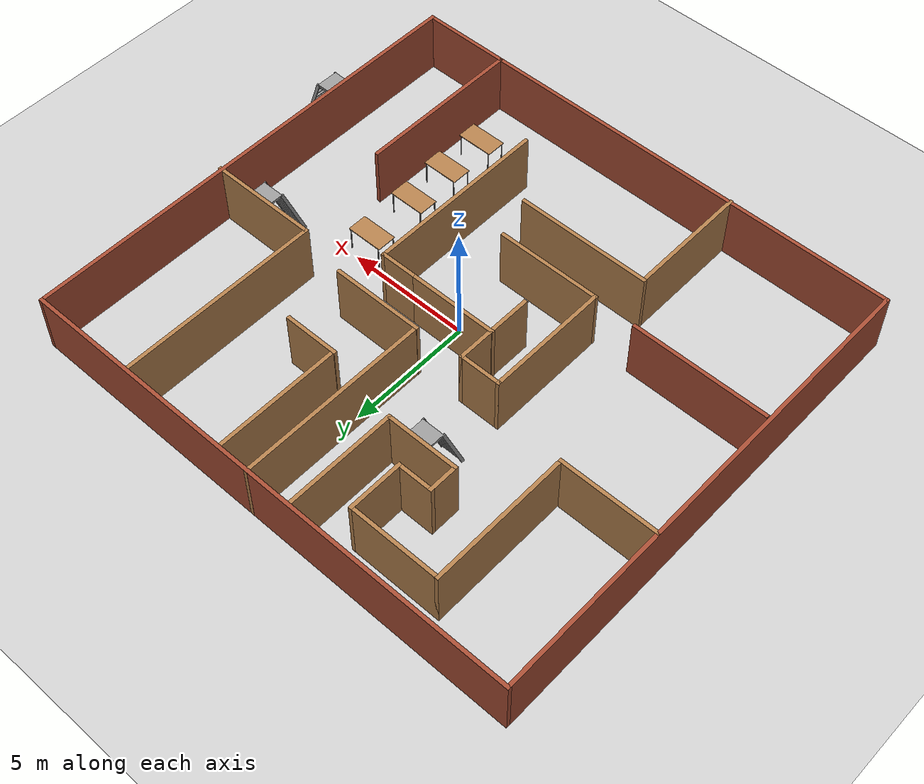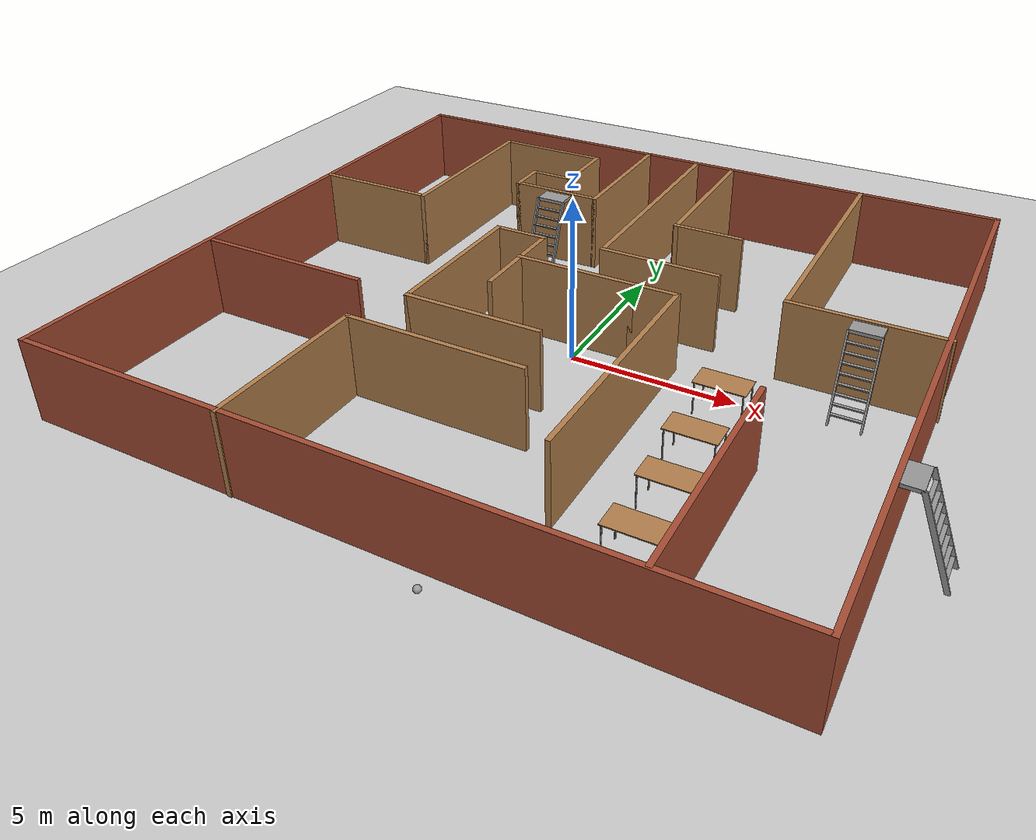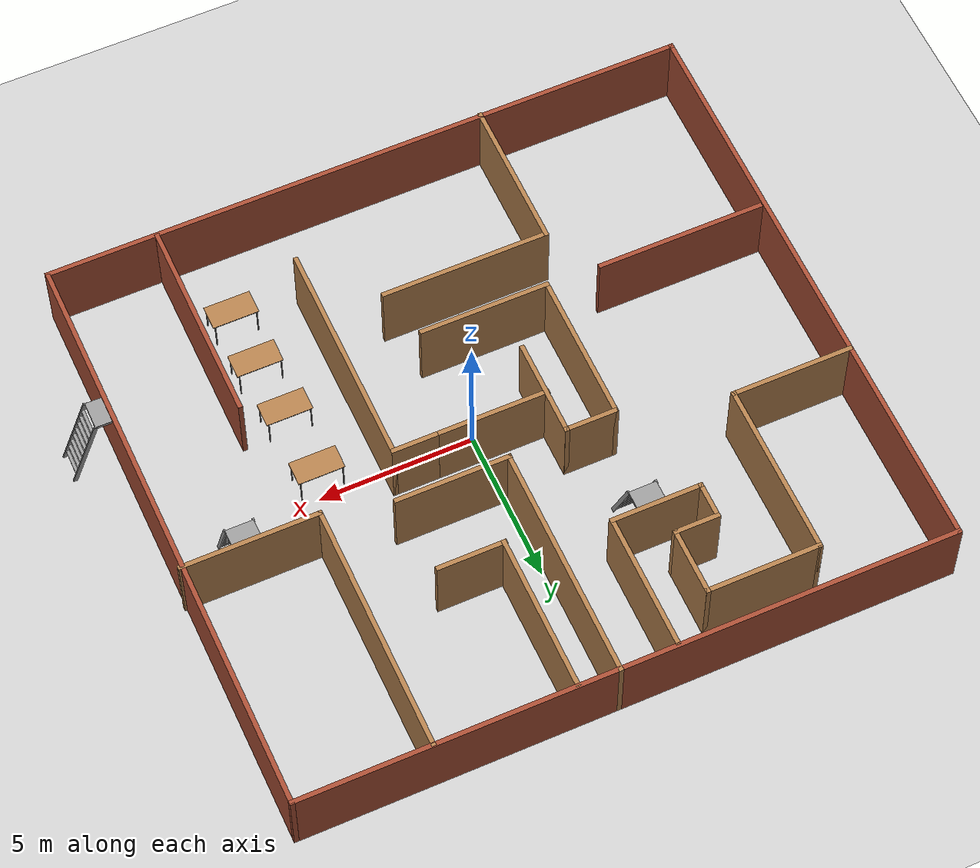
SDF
<sdf version="1.6">
 <world name="default">
  <light name="sun" type="directional">
   <pose>0 0 10 0 -0 0</pose>
   <diffuse>0.8 0.8 0.8 1</diffuse>
   <specular>0.2 0.2 0.2 1</specular>
   <attenuation>
    <range>1000</range>
    <constant>0.9</constant>
    <linear>0.01</linear>
    <quadratic>0.001</quadratic>
   </attenuation>
   <direction>-0.5 0.1 -0.9</direction>
  </light>
  <model name="ground_plane">
   <static>1</static>
   <link name="link">
    <collision name="collision">
     <geometry><plane><normal>0 0 1</normal><size>100 100</size></plane></geometry>
     <surface><friction><ode><mu>100</mu><mu2>50</mu2></ode></friction></surface>
    </collision>
    <visual name="visual">
     <cast_shadows>0</cast_shadows>
     <geometry><plane><normal>0 0 1</normal><size>100 100</size></plane></geometry>
     <material>
      <script><uri>file://media/materials/scripts/gazebo.material</uri><name>Gazebo/Grey</name></script>
     </material>
    </visual>
   </link>
  </model>
  <gravity>0 0 -9.8</gravity>
  <magnetic_field>6e-06 2.3e-05 -4.2e-05</magnetic_field>
  <atmosphere type="adiabatic"/>
  <physics name="default_physics" default="0" type="ode">
   <max_step_size>0.001</max_step_size>
   <real_time_factor>1</real_time_factor>
   <real_time_update_rate>1000</real_time_update_rate>
  </physics>
  <scene><ambient>0.4 0.4 0.4 1</ambient><background>0.7 0.7 0.7 1</background><shadows>1</shadows></scene>
  <audio><device>default</device></audio>
  <spherical_coordinates>
   <surface_model>EARTH_WGS84</surface_model>
   <latitude_deg>0</latitude_deg>
   <longitude_deg>0</longitude_deg>
   <elevation>0</elevation>
   <heading_deg>0</heading_deg>
  </spherical_coordinates>
  <model name="no-door-office">
   <pose>-0.50993 0.33776 0 0 -0 0</pose>
   <link name="Wall_10">
    <collision name="Wall_10_Collision">
     <geometry><box><size>3.75 0.15 2.5</size></box></geometry>
     <pose>0 0 1.25 0 -0 0</pose>
    </collision>
    <visual name="Wall_10_Visual">
     <pose>0 0 1.25 0 -0 0</pose>
     <geometry><box><size>3.75 0.15 2.5</size></box></geometry>
     <material>
      <script><uri>file://media/materials/scripts/gazebo.material</uri><name>Gazebo/Wood</name></script>
      <ambient>1 1 1 1</ambient>
     </material>
     <meta><layer>0</layer></meta>
    </visual>
    <pose>-4.7877 8.31382 0 0 -0 0</pose>
   </link>
   <link name="Wall_11">
    <collision name="Wall_11_Collision">
     <geometry><box><size>2.25 0.15 2.5</size></box></geometry>
     <pose>0 0 1.25 0 -0 0</pose>
    </collision>
    <visual name="Wall_11_Visual">
     <pose>0 0 1.25 0 -0 0</pose>
     <geometry><box><size>2.25 0.15 2.5</size></box></geometry>
     <material>
      <script><uri>file://media/materials/scripts/gazebo.material</uri><name>Gazebo/Wood</name></script>
      <ambient>1 1 1 1</ambient>
     </material>
     <meta><layer>0</layer></meta>
    </visual>
    <pose>-2.9877 7.26382 0 0 -0 -1.5708</pose>
   </link>
   <link name="Wall_12">
    <collision name="Wall_12_Collision">
     <geometry><box><size>1.5 0.15 2.5</size></box></geometry>
     <pose>0 0 1.25 0 -0 0</pose>
    </collision>
    <visual name="Wall_12_Visual">
     <pose>0 0 1.25 0 -0 0</pose>
     <geometry><box><size>1.5 0.15 2.5</size></box></geometry>
     <material>
      <script><uri>file://media/materials/scripts/gazebo.material</uri><name>Gazebo/Wood</name></script>
      <ambient>1 1 1 1</ambient>
     </material>
     <meta><layer>0</layer></meta>
    </visual>
    <pose>-3.6627 6.21382 0 0 -0 3.14159</pose>
   </link>
   <link name="Wall_13">
    <collision name="Wall_13_Collision">
     <geometry><box><size>1.25 0.15 2.5</size></box></geometry>
     <pose>0 0 1.25 0 -0 0</pose>
    </collision>
    <visual name="Wall_13_Visual">
     <pose>0 0 1.25 0 -0 0</pose>
     <geometry><box><size>1.25 0.15 2.5</size></box></geometry>
     <material>
      <script><uri>file://media/materials/scripts/gazebo.material</uri><name>Gazebo/Wood</name></script>
      <ambient>1 1 1 1</ambient>
     </material>
     <meta><layer>0</layer></meta>
    </visual>
    <pose>-4.3377 5.66382 0 0 -0 -1.5708</pose>
   </link>
   <link name="Wall_14">
    <collision name="Wall_14_Collision">
     <geometry><box><size>3 0.15 2.5</size></box></geometry>
     <pose>0 0 1.25 0 -0 0</pose>
    </collision>
    <visual name="Wall_14_Visual">
     <pose>0 0 1.25 0 -0 0</pose>
     <geometry><box><size>3 0.15 2.5</size></box></geometry>
     <material>
      <script><uri>file://media/materials/scripts/gazebo.material</uri><name>Gazebo/Wood</name></script>
      <ambient>1 1 1 1</ambient>
     </material>
     <meta><layer>0</layer></meta>
    </visual>
    <pose>-2.9127 5.11382 0 0 -0 0</pose>
   </link>
   <link name="Wall_15">
    <collision name="Wall_15_Collision">
     <geometry><box><size>4.5 0.15 2.5</size></box></geometry>
     <pose>0 0 1.25 0 -0 0</pose>
    </collision>
    <visual name="Wall_15_Visual">
     <pose>0 0 1.25 0 -0 0</pose>
     <geometry><box><size>4.5 0.15 2.5</size></box></geometry>
     <material>
      <script><uri>file://media/materials/scripts/gazebo.material</uri><name>Gazebo/Wood</name></script>
      <ambient>1 1 1 1</ambient>
     </material>
     <meta><layer>0</layer></meta>
    </visual>
    <pose>-1.4877 7.28882 0 0 -0 1.5708</pose>
   </link>
   <link name="Wall_17">
    <collision name="Wall_17_Collision">
     <geometry><box><size>7.75 0.15 2.5</size></box></geometry>
     <pose>0 0 1.25 0 -0 0</pose>
    </collision>
    <visual name="Wall_17_Visual">
     <pose>0 0 1.25 0 -0 0</pose>
     <geometry><box><size>7.75 0.15 2.5</size></box></geometry>
     <material>
      <script><uri>file://media/materials/scripts/gazebo.material</uri><name>Gazebo/Wood</name></script>
      <ambient>1 1 1 1</ambient>
     </material>
     <meta><layer>0</layer></meta>
    </visual>
    <pose>0.347156 5.75023 0 0 -0 -1.5708</pose>
   </link>
   <link name="Wall_18">
    <collision name="Wall_18_Collision">
     <geometry><box><size>3.75 0.15 2.5</size></box></geometry>
     <pose>0 0 1.25 0 -0 0</pose>
    </collision>
    <visual name="Wall_18_Visual">
     <pose>0 0 1.25 0 -0 0</pose>
     <geometry><box><size>3.75 0.15 2.5</size></box></geometry>
     <material>
      <script><uri>file://media/materials/scripts/gazebo.material</uri><name>Gazebo/Wood</name></script>
      <ambient>1 1 1 1</ambient>
     </material>
     <meta><layer>0</layer></meta>
    </visual>
    <pose>2.13846 1.94153 0 0 -0 0</pose>
   </link>
   <link name="Wall_20">
    <collision name="Wall_20_Collision">
     <geometry><box><size>2.25 0.15 2.5</size></box></geometry>
     <pose>0 0 1.25 0 -0 0</pose>
    </collision>
    <visual name="Wall_20_Visual">
     <pose>0 0 1.25 0 -0 0</pose>
     <geometry><box><size>2.25 0.15 2.5</size></box></geometry>
     <material>
      <script><uri>file://media/materials/scripts/gazebo.material</uri><name>Gazebo/Wood</name></script>
      <ambient>1 1 1 1</ambient>
     </material>
     <meta><layer>0</layer></meta>
    </visual>
    <pose>2.68176 4.48397 0 0 -0 3.14159</pose>
   </link>
   <link name="Wall_21">
    <collision name="Wall_21_Collision">
     <geometry><box><size>5.16191 0.15 2.5</size></box></geometry>
     <pose>0 0 1.25 0 -0 0</pose>
    </collision>
    <visual name="Wall_21_Visual">
     <pose>0 0 1.25 0 -0 0</pose>
     <geometry><box><size>5.16191 0.15 2.5</size></box></geometry>
     <material>
      <script><uri>file://media/materials/scripts/gazebo.material</uri><name>Gazebo/Wood</name></script>
      <ambient>1 1 1 1</ambient>
     </material>
     <meta><layer>0</layer></meta>
    </visual>
    <pose>1.65489 6.98992 0 0 -0 1.5708</pose>
   </link>
   <link name="Wall_23">
    <collision name="Wall_23_Collision">
     <geometry><box><size>8.25 0.15 2.5</size></box></geometry>
     <pose>0 0 1.25 0 -0 0</pose>
    </collision>
    <visual name="Wall_23_Visual">
     <pose>0 0 1.25 0 -0 0</pose>
     <geometry><box><size>8.25 0.15 2.5</size></box></geometry>
     <material>
      <script><uri>file://media/materials/scripts/gazebo.material</uri><name>Gazebo/Wood</name></script>
      <ambient>1 1 1 1</ambient>
     </material>
     <meta><layer>0</layer></meta>
    </visual>
    <pose>6.1082 5.46862 0 0 -0 -1.5708</pose>
   </link>
   <link name="Wall_24">
    <collision name="Wall_24_Collision">
     <geometry><box><size>4.5 0.15 2.5</size></box></geometry>
     <pose>0 0 1.25 0 -0 0</pose>
    </collision>
    <visual name="Wall_24_Visual">
     <pose>0 0 1.25 0 -0 0</pose>
     <geometry><box><size>4.5 0.15 2.5</size></box></geometry>
     <material>
      <script><uri>file://media/materials/scripts/gazebo.material</uri><name>Gazebo/Wood</name></script>
      <ambient>1 1 1 1</ambient>
     </material>
     <meta><layer>0</layer></meta>
    </visual>
    <pose>8.2832 1.41862 0 0 -0 0</pose>
   </link>
   <link name="Wall_3">
    <collision name="Wall_3_Collision">
     <geometry><box><size>19.25 0.15 2.5</size></box></geometry>
     <pose>0 0 1.25 0 -0 0</pose>
    </collision>
    <visual name="Wall_3_Visual">
     <pose>0 0 1.25 0 -0 0</pose>
     <geometry><box><size>19.25 0.15 2.5</size></box></geometry>
     <material>
      <script><uri>file://media/materials/scripts/gazebo.material</uri><name>Gazebo/Bricks</name></script>
      <ambient>1 1 1 1</ambient>
     </material>
     <meta><layer>0</layer></meta>
    </visual>
    <pose>-10.4582 -0.000226 0 0 -0 -1.5708</pose>
   </link>
   <link name="Wall_4">
    <collision name="Wall_4_Collision">
     <geometry><box><size>21 0.15 2.5</size></box></geometry>
     <pose>0 0 1.25 0 -0 0</pose>
    </collision>
    <visual name="Wall_4_Visual">
     <pose>0 0 1.25 0 -0 0</pose>
     <geometry><box><size>21 0.15 2.5</size></box></geometry>
     <material>
      <script><uri>file://media/materials/scripts/gazebo.material</uri><name>Gazebo/Bricks</name></script>
      <ambient>1 1 1 1</ambient>
     </material>
     <meta><layer>0</layer></meta>
    </visual>
    <pose>-0.033201 -9.55023 0 0 -0 0</pose>
   </link>
   <link name="Wall_5">
    <collision name="Wall_5_Collision">
     <geometry><box><size>19.25 0.15 2.5</size></box></geometry>
     <pose>0 0 1.25 0 -0 0</pose>
    </collision>
    <visual name="Wall_5_Visual">
     <pose>0 0 1.25 0 -0 0</pose>
     <geometry><box><size>19.25 0.15 2.5</size></box></geometry>
     <material>
      <script><uri>file://media/materials/scripts/gazebo.material</uri><name>Gazebo/Bricks</name></script>
      <ambient>1 1 1 1</ambient>
     </material>
     <meta><layer>0</layer></meta>
    </visual>
    <pose>10.3918 -0.000226 0 0 -0 1.5708</pose>
   </link>
   <link name="Wall_6">
    <collision name="Wall_6_Collision">
     <geometry><box><size>21 0.15 2.5</size></box></geometry>
     <pose>0 0 1.25 0 -0 0</pose>
    </collision>
    <visual name="Wall_6_Visual">
     <pose>0 0 1.25 0 -0 0</pose>
     <geometry><box><size>21 0.15 2.5</size></box></geometry>
     <material>
      <script><uri>file://media/materials/scripts/gazebo.material</uri><name>Gazebo/Bricks</name></script>
      <ambient>1 1 1 1</ambient>
     </material>
     <meta><layer>0</layer></meta>
    </visual>
    <pose>-0.033201 9.54977 0 0 -0 3.14159</pose>
   </link>
   <link name="Wall_8">
    <collision name="Wall_8_Collision">
     <geometry><box><size>4 0.15 2.5</size></box></geometry>
     <pose>0 0 1.25 0 -0 0</pose>
    </collision>
    <visual name="Wall_8_Visual">
     <pose>0 0 1.25 0 -0 0</pose>
     <geometry><box><size>4 0.15 2.5</size></box></geometry>
     <material>
      <script><uri>file://media/materials/scripts/gazebo.material</uri><name>Gazebo/Wood</name></script>
      <ambient>1 1 1 1</ambient>
     </material>
     <meta><layer>0</layer></meta>
    </visual>
    <pose>-8.5127 2.71382 0 0 -0 0</pose>
   </link>
   <link name="Wall_9">
    <collision name="Wall_9_Collision">
     <geometry><box><size>5.75 0.15 2.5</size></box></geometry>
     <pose>0 0 1.25 0 -0 0</pose>
    </collision>
    <visual name="Wall_9_Visual">
     <pose>0 0 1.25 0 -0 0</pose>
     <geometry><box><size>5.75 0.15 2.5</size></box></geometry>
     <material>
      <script><uri>file://media/materials/scripts/gazebo.material</uri><name>Gazebo/Wood</name></script>
      <ambient>1 1 1 1</ambient>
     </material>
     <meta><layer>0</layer></meta>
    </visual>
    <pose>-6.5877 5.51382 0 0 -0 1.5708</pose>
   </link>
   <static>1</static>
  </model>
  <model name="table">
   <static>1</static>
   <link name="link">
    <collision name="surface">
     <pose>0 0 1 0 -0 0</pose>
     <geometry><box><size>1.5 0.8 0.03</size></box></geometry>
     <surface><friction><ode><mu>0.6</mu><mu2>0.6</mu2></ode></friction></surface>
    </collision>
    <visual name="visual1">
     <pose>0 0 1 0 -0 0</pose>
     <geometry><box><size>1.5 0.8 0.03</size></box></geometry>
     <material>
      <script><uri>file://media/materials/scripts/gazebo.material</uri><name>Gazebo/Wood</name></script>
     </material>
    </visual>
    <collision name="front_left_leg">
     <pose>0.68 0.38 0.5 0 -0 0</pose>
     <geometry><cylinder><radius>0.02</radius><length>1</length></cylinder></geometry>
    </collision>
    <visual name="front_left_leg">
     <pose>0.68 0.38 0.5 0 -0 0</pose>
     <geometry><cylinder><radius>0.02</radius><length>1</length></cylinder></geometry>
     <material>
      <script><uri>file://media/materials/scripts/gazebo.material</uri><name>Gazebo/Grey</name></script>
     </material>
    </visual>
    <collision name="front_right_leg">
     <pose>0.68 -0.38 0.5 0 -0 0</pose>
     <geometry><cylinder><radius>0.02</radius><length>1</length></cylinder></geometry>
    </collision>
    <visual name="front_right_leg">
     <pose>0.68 -0.38 0.5 0 -0 0</pose>
     <geometry><cylinder><radius>0.02</radius><length>1</length></cylinder></geometry>
     <material>
      <script><uri>file://media/materials/scripts/gazebo.material</uri><name>Gazebo/Grey</name></script>
     </material>
    </visual>
    <collision name="back_right_leg">
     <pose>-0.68 -0.38 0.5 0 -0 0</pose>
     <geometry><cylinder><radius>0.02</radius><length>1</length></cylinder></geometry>
    </collision>
    <visual name="back_right_leg">
     <pose>-0.68 -0.38 0.5 0 -0 0</pose>
     <geometry><cylinder><radius>0.02</radius><length>1</length></cylinder></geometry>
     <material>
      <script><uri>file://media/materials/scripts/gazebo.material</uri><name>Gazebo/Grey</name></script>
     </material>
    </visual>
    <collision name="back_left_leg">
     <pose>-0.68 0.38 0.5 0 -0 0</pose>
     <geometry><cylinder><radius>0.02</radius><length>1</length></cylinder></geometry>
    </collision>
    <visual name="back_left_leg">
     <pose>-0.68 0.38 0.5 0 -0 0</pose>
     <geometry><cylinder><radius>0.02</radius><length>1</length></cylinder></geometry>
     <material>
      <script><uri>file://media/materials/scripts/gazebo.material</uri><name>Gazebo/Grey</name></script>
     </material>
    </visual>
   </link>
   <pose>4.78815 -0.5846 0 0 -0 0</pose>
  </model>
  <model name="table_clone">
   <static>1</static>
   <link name="link">
    <collision name="surface">
     <pose>0 0 1 0 -0 0</pose>
     <geometry><box><size>1.5 0.8 0.03</size></box></geometry>
     <surface><friction><ode><mu>0.6</mu><mu2>0.6</mu2></ode></friction></surface>
    </collision>
    <visual name="visual1">
     <pose>0 0 1 0 -0 0</pose>
     <geometry><box><size>1.5 0.8 0.03</size></box></geometry>
     <material>
      <script><uri>file://media/materials/scripts/gazebo.material</uri><name>Gazebo/Wood</name></script>
     </material>
    </visual>
    <collision name="front_left_leg">
     <pose>0.68 0.38 0.5 0 -0 0</pose>
     <geometry><cylinder><radius>0.02</radius><length>1</length></cylinder></geometry>
    </collision>
    <visual name="front_left_leg">
     <pose>0.68 0.38 0.5 0 -0 0</pose>
     <geometry><cylinder><radius>0.02</radius><length>1</length></cylinder></geometry>
     <material>
      <script><uri>file://media/materials/scripts/gazebo.material</uri><name>Gazebo/Grey</name></script>
     </material>
    </visual>
    <collision name="front_right_leg">
     <pose>0.68 -0.38 0.5 0 -0 0</pose>
     <geometry><cylinder><radius>0.02</radius><length>1</length></cylinder></geometry>
    </collision>
    <visual name="front_right_leg">
     <pose>0.68 -0.38 0.5 0 -0 0</pose>
     <geometry><cylinder><radius>0.02</radius><length>1</length></cylinder></geometry>
     <material>
      <script><uri>file://media/materials/scripts/gazebo.material</uri><name>Gazebo/Grey</name></script>
     </material>
    </visual>
    <collision name="back_right_leg">
     <pose>-0.68 -0.38 0.5 0 -0 0</pose>
     <geometry><cylinder><radius>0.02</radius><length>1</length></cylinder></geometry>
    </collision>
    <visual name="back_right_leg">
     <pose>-0.68 -0.38 0.5 0 -0 0</pose>
     <geometry><cylinder><radius>0.02</radius><length>1</length></cylinder></geometry>
     <material>
      <script><uri>file://media/materials/scripts/gazebo.material</uri><name>Gazebo/Grey</name></script>
     </material>
    </visual>
    <collision name="back_left_leg">
     <pose>-0.68 0.38 0.5 0 -0 0</pose>
     <geometry><cylinder><radius>0.02</radius><length>1</length></cylinder></geometry>
    </collision>
    <visual name="back_left_leg">
     <pose>-0.68 0.38 0.5 0 -0 0</pose>
     <geometry><cylinder><radius>0.02</radius><length>1</length></cylinder></geometry>
     <material>
      <script><uri>file://media/materials/scripts/gazebo.material</uri><name>Gazebo/Grey</name></script>
     </material>
    </visual>
   </link>
   <pose>4.87292 -2.84423 0 0 -0 0</pose>
  </model>
  <model name="table_clone_0">
   <static>1</static>
   <link name="link">
    <collision name="surface">
     <pose>0 0 1 0 -0 0</pose>
     <geometry><box><size>1.5 0.8 0.03</size></box></geometry>
     <surface><friction><ode><mu>0.6</mu><mu2>0.6</mu2></ode></friction></surface>
    </collision>
    <visual name="visual1">
     <pose>0 0 1 0 -0 0</pose>
     <geometry><box><size>1.5 0.8 0.03</size></box></geometry>
     <material>
      <script><uri>file://media/materials/scripts/gazebo.material</uri><name>Gazebo/Wood</name></script>
     </material>
    </visual>
    <collision name="front_left_leg">
     <pose>0.68 0.38 0.5 0 -0 0</pose>
     <geometry><cylinder><radius>0.02</radius><length>1</length></cylinder></geometry>
    </collision>
    <visual name="front_left_leg">
     <pose>0.68 0.38 0.5 0 -0 0</pose>
     <geometry><cylinder><radius>0.02</radius><length>1</length></cylinder></geometry>
     <material>
      <script><uri>file://media/materials/scripts/gazebo.material</uri><name>Gazebo/Grey</name></script>
     </material>
    </visual>
    <collision name="front_right_leg">
     <pose>0.68 -0.38 0.5 0 -0 0</pose>
     <geometry><cylinder><radius>0.02</radius><length>1</length></cylinder></geometry>
    </collision>
    <visual name="front_right_leg">
     <pose>0.68 -0.38 0.5 0 -0 0</pose>
     <geometry><cylinder><radius>0.02</radius><length>1</length></cylinder></geometry>
     <material>
      <script><uri>file://media/materials/scripts/gazebo.material</uri><name>Gazebo/Grey</name></script>
     </material>
    </visual>
    <collision name="back_right_leg">
     <pose>-0.68 -0.38 0.5 0 -0 0</pose>
     <geometry><cylinder><radius>0.02</radius><length>1</length></cylinder></geometry>
    </collision>
    <visual name="back_right_leg">
     <pose>-0.68 -0.38 0.5 0 -0 0</pose>
     <geometry><cylinder><radius>0.02</radius><length>1</length></cylinder></geometry>
     <material>
      <script><uri>file://media/materials/scripts/gazebo.material</uri><name>Gazebo/Grey</name></script>
     </material>
    </visual>
    <collision name="back_left_leg">
     <pose>-0.68 0.38 0.5 0 -0 0</pose>
     <geometry><cylinder><radius>0.02</radius><length>1</length></cylinder></geometry>
    </collision>
    <visual name="back_left_leg">
     <pose>-0.68 0.38 0.5 0 -0 0</pose>
     <geometry><cylinder><radius>0.02</radius><length>1</length></cylinder></geometry>
     <material>
      <script><uri>file://media/materials/scripts/gazebo.material</uri><name>Gazebo/Grey</name></script>
     </material>
    </visual>
   </link>
   <pose>5.02901 -4.78324 0 0 -0 0</pose>
  </model>
  <model name="table_clone_1">
   <static>1</static>
   <link name="link">
    <collision name="surface">
     <pose>0 0 1 0 -0 0</pose>
     <geometry><box><size>1.5 0.8 0.03</size></box></geometry>
     <surface><friction><ode><mu>0.6</mu><mu2>0.6</mu2></ode></friction></surface>
    </collision>
    <visual name="visual1">
     <pose>0 0 1 0 -0 0</pose>
     <geometry><box><size>1.5 0.8 0.03</size></box></geometry>
     <material>
      <script><uri>file://media/materials/scripts/gazebo.material</uri><name>Gazebo/Wood</name></script>
     </material>
    </visual>
    <collision name="front_left_leg">
     <pose>0.68 0.38 0.5 0 -0 0</pose>
     <geometry><cylinder><radius>0.02</radius><length>1</length></cylinder></geometry>
    </collision>
    <visual name="front_left_leg">
     <pose>0.68 0.38 0.5 0 -0 0</pose>
     <geometry><cylinder><radius>0.02</radius><length>1</length></cylinder></geometry>
     <material>
      <script><uri>file://media/materials/scripts/gazebo.material</uri><name>Gazebo/Grey</name></script>
     </material>
    </visual>
    <collision name="front_right_leg">
     <pose>0.68 -0.38 0.5 0 -0 0</pose>
     <geometry><cylinder><radius>0.02</radius><length>1</length></cylinder></geometry>
    </collision>
    <visual name="front_right_leg">
     <pose>0.68 -0.38 0.5 0 -0 0</pose>
     <geometry><cylinder><radius>0.02</radius><length>1</length></cylinder></geometry>
     <material>
      <script><uri>file://media/materials/scripts/gazebo.material</uri><name>Gazebo/Grey</name></script>
     </material>
    </visual>
    <collision name="back_right_leg">
     <pose>-0.68 -0.38 0.5 0 -0 0</pose>
     <geometry><cylinder><radius>0.02</radius><length>1</length></cylinder></geometry>
    </collision>
    <visual name="back_right_leg">
     <pose>-0.68 -0.38 0.5 0 -0 0</pose>
     <geometry><cylinder><radius>0.02</radius><length>1</length></cylinder></geometry>
     <material>
      <script><uri>file://media/materials/scripts/gazebo.material</uri><name>Gazebo/Grey</name></script>
     </material>
    </visual>
    <collision name="back_left_leg">
     <pose>-0.68 0.38 0.5 0 -0 0</pose>
     <geometry><cylinder><radius>0.02</radius><length>1</length></cylinder></geometry>
    </collision>
    <visual name="back_left_leg">
     <pose>-0.68 0.38 0.5 0 -0 0</pose>
     <geometry><cylinder><radius>0.02</radius><length>1</length></cylinder></geometry>
     <material>
      <script><uri>file://media/materials/scripts/gazebo.material</uri><name>Gazebo/Grey</name></script>
     </material>
    </visual>
   </link>
   <pose>5.0413 -6.6954 0 0 -0 0</pose>
  </model>
  <model name="ladder_70deg_0rails">
   <static>1</static>
   <link name="step0">
    <pose>0 0.097059 0.266667 0 -0 0</pose>
    <inertial>
     <mass>9.75482</mass>
     <inertia>
      <ixx>0.00957124</ixx>
      <iyy>0.65963</iyy>
      <izz>0.666842</izz>
      <ixy>0</ixy>
      <ixz>0</ixz>
      <iyz>0</iyz>
     </inertia>
    </inertial>
    <collision name="collision"><geometry><box><size>0.9 0.1016 0.0381</size></box></geometry></collision>
    <visual name="visual">
     <geometry><box><size>0.9 0.1016 0.0381</size></box></geometry>
     <material>
      <script><uri>file://media/materials/scripts/gazebo.material</uri><name>Gazebo/Grey</name></script>
     </material>
    </visual>
   </link>
   <link name="step1">
    <pose>0 0.194117 0.533333 0 -0 0</pose>
    <inertial>
     <mass>9.75482</mass>
     <inertia>
      <ixx>0.00957124</ixx>
      <iyy>0.65963</iyy>
      <izz>0.666842</izz>
      <ixy>0</ixy>
      <ixz>0</ixz>
      <iyz>0</iyz>
     </inertia>
    </inertial>
    <collision name="collision"><geometry><box><size>0.9 0.1016 0.0381</size></box></geometry></collision>
    <visual name="visual">
     <geometry><box><size>0.9 0.1016 0.0381</size></box></geometry>
     <material>
      <script><uri>file://media/materials/scripts/gazebo.material</uri><name>Gazebo/Grey</name></script>
     </material>
    </visual>
   </link>
   <link name="step2">
    <pose>0 0.291176 0.8 0 -0 0</pose>
    <inertial>
     <mass>9.75482</mass>
     <inertia>
      <ixx>0.00957124</ixx>
      <iyy>0.65963</iyy>
      <izz>0.666842</izz>
      <ixy>0</ixy>
      <ixz>0</ixz>
      <iyz>0</iyz>
     </inertia>
    </inertial>
    <collision name="collision"><geometry><box><size>0.9 0.1016 0.0381</size></box></geometry></collision>
    <visual name="visual">
     <geometry><box><size>0.9 0.1016 0.0381</size></box></geometry>
     <material>
      <script><uri>file://media/materials/scripts/gazebo.material</uri><name>Gazebo/Grey</name></script>
     </material>
    </visual>
   </link>
   <link name="step3">
    <pose>0 0.388235 1.06667 0 -0 0</pose>
    <inertial>
     <mass>9.75482</mass>
     <inertia>
      <ixx>0.00957124</ixx>
      <iyy>0.65963</iyy>
      <izz>0.666842</izz>
      <ixy>0</ixy>
      <ixz>0</ixz>
      <iyz>0</iyz>
     </inertia>
    </inertial>
    <collision name="collision"><geometry><box><size>0.9 0.1016 0.0381</size></box></geometry></collision>
    <visual name="visual">
     <geometry><box><size>0.9 0.1016 0.0381</size></box></geometry>
     <material>
      <script><uri>file://media/materials/scripts/gazebo.material</uri><name>Gazebo/Grey</name></script>
     </material>
    </visual>
   </link>
   <link name="step4">
    <pose>0 0.485294 1.33333 0 -0 0</pose>
    <inertial>
     <mass>9.75482</mass>
     <inertia>
      <ixx>0.00957124</ixx>
      <iyy>0.65963</iyy>
      <izz>0.666842</izz>
      <ixy>0</ixy>
      <ixz>0</ixz>
      <iyz>0</iyz>
     </inertia>
    </inertial>
    <collision name="collision"><geometry><box><size>0.9 0.1016 0.0381</size></box></geometry></collision>
    <visual name="visual">
     <geometry><box><size>0.9 0.1016 0.0381</size></box></geometry>
     <material>
      <script><uri>file://media/materials/scripts/gazebo.material</uri><name>Gazebo/Grey</name></script>
     </material>
    </visual>
   </link>
   <link name="step5">
    <pose>0 0.582352 1.6 0 -0 0</pose>
    <inertial>
     <mass>9.75482</mass>
     <inertia>
      <ixx>0.00957124</ixx>
      <iyy>0.65963</iyy>
      <izz>0.666842</izz>
      <ixy>0</ixy>
      <ixz>0</ixz>
      <iyz>0</iyz>
     </inertia>
    </inertial>
    <collision name="collision"><geometry><box><size>0.9 0.1016 0.0381</size></box></geometry></collision>
    <visual name="visual">
     <geometry><box><size>0.9 0.1016 0.0381</size></box></geometry>
     <material>
      <script><uri>file://media/materials/scripts/gazebo.material</uri><name>Gazebo/Grey</name></script>
     </material>
    </visual>
   </link>
   <link name="step6">
    <pose>0 0.679411 1.86667 0 -0 0</pose>
    <inertial>
     <mass>9.75482</mass>
     <inertia>
      <ixx>0.00957124</ixx>
      <iyy>0.65963</iyy>
      <izz>0.666842</izz>
      <ixy>0</ixy>
      <ixz>0</ixz>
      <iyz>0</iyz>
     </inertia>
    </inertial>
    <collision name="collision"><geometry><box><size>0.9 0.1016 0.0381</size></box></geometry></collision>
    <visual name="visual">
     <geometry><box><size>0.9 0.1016 0.0381</size></box></geometry>
     <material>
      <script><uri>file://media/materials/scripts/gazebo.material</uri><name>Gazebo/Grey</name></script>
     </material>
    </visual>
   </link>
   <link name="step7">
    <pose>0 0.77647 2.13333 0 -0 0</pose>
    <inertial>
     <mass>9.75482</mass>
     <inertia>
      <ixx>0.00957124</ixx>
      <iyy>0.65963</iyy>
      <izz>0.666842</izz>
      <ixy>0</ixy>
      <ixz>0</ixz>
      <iyz>0</iyz>
     </inertia>
    </inertial>
    <collision name="collision"><geometry><box><size>0.9 0.1016 0.0381</size></box></geometry></collision>
    <visual name="visual">
     <geometry><box><size>0.9 0.1016 0.0381</size></box></geometry>
     <material>
      <script><uri>file://media/materials/scripts/gazebo.material</uri><name>Gazebo/Grey</name></script>
     </material>
    </visual>
   </link>
   <link name="landing">
    <pose>0 1.17353 2.4 0 -0 0</pose>
    <inertial>
     <mass>57.6072</mass>
     <inertia><ixx>1.73518</ixx><iyy>3.89545</iyy><izz>5.6167</izz><ixy>0</ixy><ixz>0</ixz><iyz>0</iyz></inertia>
    </inertial>
    <collision name="collision"><geometry><box><size>0.9 0.6 0.1016</size></box></geometry></collision>
    <visual name="visual">
     <geometry><box><size>0.9 0.6 0.1016</size></box></geometry>
     <material>
      <script><uri>file://media/materials/scripts/gazebo.material</uri><name>Gazebo/Grey</name></script>
     </material>
    </visual>
   </link>
   <link name="left_side_wall">
    <pose>-0.45 0.436764 1.2 1.22173 -0 0</pose>
    <collision name="collision"><geometry><box><size>0.0508 2.63403 0.13</size></box></geometry></collision>
    <visual name="visual">
     <geometry><box><size>0.0508 2.63403 0.13</size></box></geometry>
     <material>
      <script><uri>file://media/materials/scripts/gazebo.material</uri><name>Gazebo/Grey</name></script>
     </material>
    </visual>
   </link>
   <link name="right_side_wall">
    <pose>0.45 0.436764 1.2 1.22173 -0 0</pose>
    <collision name="collision"><geometry><box><size>0.0508 2.63403 0.13</size></box></geometry></collision>
    <visual name="visual">
     <geometry><box><size>0.0508 2.63403 0.13</size></box></geometry>
     <material>
      <script><uri>file://media/materials/scripts/gazebo.material</uri><name>Gazebo/Grey</name></script>
     </material>
    </visual>
   </link>
   <pose>-3.28499 3.90586 0 0 -0 0</pose>
  </model>
  <model name="ladder_70deg_0rails_clone">
   <static>1</static>
   <link name="step0">
    <pose>0 0.097059 0.266667 0 -0 0</pose>
    <inertial>
     <mass>9.75482</mass>
     <inertia>
      <ixx>0.00957124</ixx>
      <iyy>0.65963</iyy>
      <izz>0.666842</izz>
      <ixy>0</ixy>
      <ixz>0</ixz>
      <iyz>0</iyz>
     </inertia>
    </inertial>
    <collision name="collision"><geometry><box><size>0.9 0.1016 0.0381</size></box></geometry></collision>
    <visual name="visual">
     <geometry><box><size>0.9 0.1016 0.0381</size></box></geometry>
     <material>
      <script><uri>file://media/materials/scripts/gazebo.material</uri><name>Gazebo/Grey</name></script>
     </material>
    </visual>
   </link>
   <link name="step1">
    <pose>0 0.194117 0.533333 0 -0 0</pose>
    <inertial>
     <mass>9.75482</mass>
     <inertia>
      <ixx>0.00957124</ixx>
      <iyy>0.65963</iyy>
      <izz>0.666842</izz>
      <ixy>0</ixy>
      <ixz>0</ixz>
      <iyz>0</iyz>
     </inertia>
    </inertial>
    <collision name="collision"><geometry><box><size>0.9 0.1016 0.0381</size></box></geometry></collision>
    <visual name="visual">
     <geometry><box><size>0.9 0.1016 0.0381</size></box></geometry>
     <material>
      <script><uri>file://media/materials/scripts/gazebo.material</uri><name>Gazebo/Grey</name></script>
     </material>
    </visual>
   </link>
   <link name="step2">
    <pose>0 0.291176 0.8 0 -0 0</pose>
    <inertial>
     <mass>9.75482</mass>
     <inertia>
      <ixx>0.00957124</ixx>
      <iyy>0.65963</iyy>
      <izz>0.666842</izz>
      <ixy>0</ixy>
      <ixz>0</ixz>
      <iyz>0</iyz>
     </inertia>
    </inertial>
    <collision name="collision"><geometry><box><size>0.9 0.1016 0.0381</size></box></geometry></collision>
    <visual name="visual">
     <geometry><box><size>0.9 0.1016 0.0381</size></box></geometry>
     <material>
      <script><uri>file://media/materials/scripts/gazebo.material</uri><name>Gazebo/Grey</name></script>
     </material>
    </visual>
   </link>
   <link name="step3">
    <pose>0 0.388235 1.06667 0 -0 0</pose>
    <inertial>
     <mass>9.75482</mass>
     <inertia>
      <ixx>0.00957124</ixx>
      <iyy>0.65963</iyy>
      <izz>0.666842</izz>
      <ixy>0</ixy>
      <ixz>0</ixz>
      <iyz>0</iyz>
     </inertia>
    </inertial>
    <collision name="collision"><geometry><box><size>0.9 0.1016 0.0381</size></box></geometry></collision>
    <visual name="visual">
     <geometry><box><size>0.9 0.1016 0.0381</size></box></geometry>
     <material>
      <script><uri>file://media/materials/scripts/gazebo.material</uri><name>Gazebo/Grey</name></script>
     </material>
    </visual>
   </link>
   <link name="step4">
    <pose>0 0.485294 1.33333 0 -0 0</pose>
    <inertial>
     <mass>9.75482</mass>
     <inertia>
      <ixx>0.00957124</ixx>
      <iyy>0.65963</iyy>
      <izz>0.666842</izz>
      <ixy>0</ixy>
      <ixz>0</ixz>
      <iyz>0</iyz>
     </inertia>
    </inertial>
    <collision name="collision"><geometry><box><size>0.9 0.1016 0.0381</size></box></geometry></collision>
    <visual name="visual">
     <geometry><box><size>0.9 0.1016 0.0381</size></box></geometry>
     <material>
      <script><uri>file://media/materials/scripts/gazebo.material</uri><name>Gazebo/Grey</name></script>
     </material>
    </visual>
   </link>
   <link name="step5">
    <pose>0 0.582352 1.6 0 -0 0</pose>
    <inertial>
     <mass>9.75482</mass>
     <inertia>
      <ixx>0.00957124</ixx>
      <iyy>0.65963</iyy>
      <izz>0.666842</izz>
      <ixy>0</ixy>
      <ixz>0</ixz>
      <iyz>0</iyz>
     </inertia>
    </inertial>
    <collision name="collision"><geometry><box><size>0.9 0.1016 0.0381</size></box></geometry></collision>
    <visual name="visual">
     <geometry><box><size>0.9 0.1016 0.0381</size></box></geometry>
     <material>
      <script><uri>file://media/materials/scripts/gazebo.material</uri><name>Gazebo/Grey</name></script>
     </material>
    </visual>
   </link>
   <link name="step6">
    <pose>0 0.679411 1.86667 0 -0 0</pose>
    <inertial>
     <mass>9.75482</mass>
     <inertia>
      <ixx>0.00957124</ixx>
      <iyy>0.65963</iyy>
      <izz>0.666842</izz>
      <ixy>0</ixy>
      <ixz>0</ixz>
      <iyz>0</iyz>
     </inertia>
    </inertial>
    <collision name="collision"><geometry><box><size>0.9 0.1016 0.0381</size></box></geometry></collision>
    <visual name="visual">
     <geometry><box><size>0.9 0.1016 0.0381</size></box></geometry>
     <material>
      <script><uri>file://media/materials/scripts/gazebo.material</uri><name>Gazebo/Grey</name></script>
     </material>
    </visual>
   </link>
   <link name="step7">
    <pose>0 0.77647 2.13333 0 -0 0</pose>
    <inertial>
     <mass>9.75482</mass>
     <inertia>
      <ixx>0.00957124</ixx>
      <iyy>0.65963</iyy>
      <izz>0.666842</izz>
      <ixy>0</ixy>
      <ixz>0</ixz>
      <iyz>0</iyz>
     </inertia>
    </inertial>
    <collision name="collision"><geometry><box><size>0.9 0.1016 0.0381</size></box></geometry></collision>
    <visual name="visual">
     <geometry><box><size>0.9 0.1016 0.0381</size></box></geometry>
     <material>
      <script><uri>file://media/materials/scripts/gazebo.material</uri><name>Gazebo/Grey</name></script>
     </material>
    </visual>
   </link>
   <link name="landing">
    <pose>0 1.17353 2.4 0 -0 0</pose>
    <inertial>
     <mass>57.6072</mass>
     <inertia><ixx>1.73518</ixx><iyy>3.89545</iyy><izz>5.6167</izz><ixy>0</ixy><ixz>0</ixz><iyz>0</iyz></inertia>
    </inertial>
    <collision name="collision"><geometry><box><size>0.9 0.6 0.1016</size></box></geometry></collision>
    <visual name="visual">
     <geometry><box><size>0.9 0.6 0.1016</size></box></geometry>
     <material>
      <script><uri>file://media/materials/scripts/gazebo.material</uri><name>Gazebo/Grey</name></script>
     </material>
    </visual>
   </link>
   <link name="left_side_wall">
    <pose>-0.45 0.436764 1.2 1.22173 -0 0</pose>
    <collision name="collision"><geometry><box><size>0.0508 2.63403 0.13</size></box></geometry></collision>
    <visual name="visual">
     <geometry><box><size>0.0508 2.63403 0.13</size></box></geometry>
     <material>
      <script><uri>file://media/materials/scripts/gazebo.material</uri><name>Gazebo/Grey</name></script>
     </material>
    </visual>
   </link>
   <link name="right_side_wall">
    <pose>0.45 0.436764 1.2 1.22173 -0 0</pose>
    <collision name="collision"><geometry><box><size>0.0508 2.63403 0.13</size></box></geometry></collision>
    <visual name="visual">
     <geometry><box><size>0.0508 2.63403 0.13</size></box></geometry>
     <material>
      <script><uri>file://media/materials/scripts/gazebo.material</uri><name>Gazebo/Grey</name></script>
     </material>
    </visual>
   </link>
   <pose>7.88326 0.272475 0 0 -0 0</pose>
  </model>
  <model name="ladder_70deg_0rails_clone_clone">
   <static>1</static>
   <link name="step0">
    <pose>0 0.097059 0.266667 0 -0 0</pose>
    <inertial>
     <mass>9.75482</mass>
     <inertia>
      <ixx>0.00957124</ixx>
      <iyy>0.65963</iyy>
      <izz>0.666842</izz>
      <ixy>0</ixy>
      <ixz>0</ixz>
      <iyz>0</iyz>
     </inertia>
    </inertial>
    <collision name="collision"><geometry><box><size>0.9 0.1016 0.0381</size></box></geometry></collision>
    <visual name="visual">
     <geometry><box><size>0.9 0.1016 0.0381</size></box></geometry>
     <material>
      <script><uri>file://media/materials/scripts/gazebo.material</uri><name>Gazebo/Grey</name></script>
     </material>
    </visual>
   </link>
   <link name="step1">
    <pose>0 0.194117 0.533333 0 -0 0</pose>
    <inertial>
     <mass>9.75482</mass>
     <inertia>
      <ixx>0.00957124</ixx>
      <iyy>0.65963</iyy>
      <izz>0.666842</izz>
      <ixy>0</ixy>
      <ixz>0</ixz>
      <iyz>0</iyz>
     </inertia>
    </inertial>
    <collision name="collision"><geometry><box><size>0.9 0.1016 0.0381</size></box></geometry></collision>
    <visual name="visual">
     <geometry><box><size>0.9 0.1016 0.0381</size></box></geometry>
     <material>
      <script><uri>file://media/materials/scripts/gazebo.material</uri><name>Gazebo/Grey</name></script>
     </material>
    </visual>
   </link>
   <link name="step2">
    <pose>0 0.291176 0.8 0 -0 0</pose>
    <inertial>
     <mass>9.75482</mass>
     <inertia>
      <ixx>0.00957124</ixx>
      <iyy>0.65963</iyy>
      <izz>0.666842</izz>
      <ixy>0</ixy>
      <ixz>0</ixz>
      <iyz>0</iyz>
     </inertia>
    </inertial>
    <collision name="collision"><geometry><box><size>0.9 0.1016 0.0381</size></box></geometry></collision>
    <visual name="visual">
     <geometry><box><size>0.9 0.1016 0.0381</size></box></geometry>
     <material>
      <script><uri>file://media/materials/scripts/gazebo.material</uri><name>Gazebo/Grey</name></script>
     </material>
    </visual>
   </link>
   <link name="step3">
    <pose>0 0.388235 1.06667 0 -0 0</pose>
    <inertial>
     <mass>9.75482</mass>
     <inertia>
      <ixx>0.00957124</ixx>
      <iyy>0.65963</iyy>
      <izz>0.666842</izz>
      <ixy>0</ixy>
      <ixz>0</ixz>
      <iyz>0</iyz>
     </inertia>
    </inertial>
    <collision name="collision"><geometry><box><size>0.9 0.1016 0.0381</size></box></geometry></collision>
    <visual name="visual">
     <geometry><box><size>0.9 0.1016 0.0381</size></box></geometry>
     <material>
      <script><uri>file://media/materials/scripts/gazebo.material</uri><name>Gazebo/Grey</name></script>
     </material>
    </visual>
   </link>
   <link name="step4">
    <pose>0 0.485294 1.33333 0 -0 0</pose>
    <inertial>
     <mass>9.75482</mass>
     <inertia>
      <ixx>0.00957124</ixx>
      <iyy>0.65963</iyy>
      <izz>0.666842</izz>
      <ixy>0</ixy>
      <ixz>0</ixz>
      <iyz>0</iyz>
     </inertia>
    </inertial>
    <collision name="collision"><geometry><box><size>0.9 0.1016 0.0381</size></box></geometry></collision>
    <visual name="visual">
     <geometry><box><size>0.9 0.1016 0.0381</size></box></geometry>
     <material>
      <script><uri>file://media/materials/scripts/gazebo.material</uri><name>Gazebo/Grey</name></script>
     </material>
    </visual>
   </link>
   <link name="step5">
    <pose>0 0.582352 1.6 0 -0 0</pose>
    <inertial>
     <mass>9.75482</mass>
     <inertia>
      <ixx>0.00957124</ixx>
      <iyy>0.65963</iyy>
      <izz>0.666842</izz>
      <ixy>0</ixy>
      <ixz>0</ixz>
      <iyz>0</iyz>
     </inertia>
    </inertial>
    <collision name="collision"><geometry><box><size>0.9 0.1016 0.0381</size></box></geometry></collision>
    <visual name="visual">
     <geometry><box><size>0.9 0.1016 0.0381</size></box></geometry>
     <material>
      <script><uri>file://media/materials/scripts/gazebo.material</uri><name>Gazebo/Grey</name></script>
     </material>
    </visual>
   </link>
   <link name="step6">
    <pose>0 0.679411 1.86667 0 -0 0</pose>
    <inertial>
     <mass>9.75482</mass>
     <inertia>
      <ixx>0.00957124</ixx>
      <iyy>0.65963</iyy>
      <izz>0.666842</izz>
      <ixy>0</ixy>
      <ixz>0</ixz>
      <iyz>0</iyz>
     </inertia>
    </inertial>
    <collision name="collision"><geometry><box><size>0.9 0.1016 0.0381</size></box></geometry></collision>
    <visual name="visual">
     <geometry><box><size>0.9 0.1016 0.0381</size></box></geometry>
     <material>
      <script><uri>file://media/materials/scripts/gazebo.material</uri><name>Gazebo/Grey</name></script>
     </material>
    </visual>
   </link>
   <link name="step7">
    <pose>0 0.77647 2.13333 0 -0 0</pose>
    <inertial>
     <mass>9.75482</mass>
     <inertia>
      <ixx>0.00957124</ixx>
      <iyy>0.65963</iyy>
      <izz>0.666842</izz>
      <ixy>0</ixy>
      <ixz>0</ixz>
      <iyz>0</iyz>
     </inertia>
    </inertial>
    <collision name="collision"><geometry><box><size>0.9 0.1016 0.0381</size></box></geometry></collision>
    <visual name="visual">
     <geometry><box><size>0.9 0.1016 0.0381</size></box></geometry>
     <material>
      <script><uri>file://media/materials/scripts/gazebo.material</uri><name>Gazebo/Grey</name></script>
     </material>
    </visual>
   </link>
   <link name="landing">
    <pose>0 1.17353 2.4 0 -0 0</pose>
    <inertial>
     <mass>57.6072</mass>
     <inertia><ixx>1.73518</ixx><iyy>3.89545</iyy><izz>5.6167</izz><ixy>0</ixy><ixz>0</ixz><iyz>0</iyz></inertia>
    </inertial>
    <collision name="collision"><geometry><box><size>0.9 0.6 0.1016</size></box></geometry></collision>
    <visual name="visual">
     <geometry><box><size>0.9 0.6 0.1016</size></box></geometry>
     <material>
      <script><uri>file://media/materials/scripts/gazebo.material</uri><name>Gazebo/Grey</name></script>
     </material>
    </visual>
   </link>
   <link name="left_side_wall">
    <pose>-0.45 0.436764 1.2 1.22173 -0 0</pose>
    <collision name="collision"><geometry><box><size>0.0508 2.63403 0.13</size></box></geometry></collision>
    <visual name="visual">
     <geometry><box><size>0.0508 2.63403 0.13</size></box></geometry>
     <material>
      <script><uri>file://media/materials/scripts/gazebo.material</uri><name>Gazebo/Grey</name></script>
     </material>
    </visual>
   </link>
   <link name="right_side_wall">
    <pose>0.45 0.436764 1.2 1.22173 -0 0</pose>
    <collision name="collision"><geometry><box><size>0.0508 2.63403 0.13</size></box></geometry></collision>
    <visual name="visual">
     <geometry><box><size>0.0508 2.63403 0.13</size></box></geometry>
     <material>
      <script><uri>file://media/materials/scripts/gazebo.material</uri><name>Gazebo/Grey</name></script>
     </material>
    </visual>
   </link>
   <pose>11.3605 -4.08919 0 0 -0 1.55803</pose>
  </model>
  <model name="white_ball">
   <link name="link_0">
    <inertial>
     <mass>1</mass>
     <inertia><ixx>0.1</ixx><ixy>0</ixy><ixz>0</ixz><iyy>0.1</iyy><iyz>0</iyz><izz>0.1</izz></inertia>
    </inertial>
    <visual name="visual">
     <geometry><sphere><radius>0.1</radius></sphere></geometry>
     <material>
      <lighting>1</lighting>
      <script><uri>file://media/materials/scripts/gazebo.material</uri><name>Gazebo/Grey</name></script>
      <shader type="vertex"><normal_map>__default__</normal_map></shader>
      <ambient>1 1 1 1</ambient>
      <diffuse>1 1 1 1</diffuse>
      <specular>1 1 1 1</specular>
      <emissive>1 1 1 1</emissive>
     </material>
    </visual>
    <collision name="collision">
     <geometry><sphere><radius>0.1</radius></sphere></geometry>
     <surface>
      <friction>
       <ode><mu>1</mu><mu2>1</mu2><fdir1>0 0 0</fdir1><slip1>0</slip1><slip2>0</slip2></ode>
       <torsional>
        <coefficient>1</coefficient>
        <patch_radius>0</patch_radius>
        <surface_radius>0</surface_radius>
        <use_patch_radius>1</use_patch_radius>
        <ode><slip>0</slip></ode>
       </torsional>
      </friction>
      <bounce><restitution_coefficient>0</restitution_coefficient><threshold>1e+06</threshold></bounce>
      <contact>
       <collide_without_contact>0</collide_without_contact>
       <collide_without_contact_bitmask>1</collide_without_contact_bitmask>
       <collide_bitmask>1</collide_bitmask>
       <ode>
        <soft_cfm>0</soft_cfm>
        <soft_erp>0.2</soft_erp>
        <kp>1e+13</kp>
        <kd>1</kd>
        <max_vel>0.01</max_vel>
        <min_depth>0</min_depth>
       </ode>
       <bullet>
        <split_impulse>1</split_impulse>
        <split_impulse_penetration_threshold>-0.01</split_impulse_penetration_threshold>
        <soft_cfm>0</soft_cfm>
        <soft_erp>0.2</soft_erp>
        <kp>1e+13</kp>
        <kd>1</kd>
       </bullet>
      </contact>
     </surface>
    </collision>
   </link>
   <static>0</static>
   <pose>1.35107 -9.79964 0.1 0 -0 0</pose>
  </model>
  <model name="add_room">
   <pose>-2.22154 -3.5578 0 0 -0 0</pose>
   <link name="Wall_0">
    <collision name="Wall_0_Collision">
     <geometry><box><size>4.25 0.15 2.5</size></box></geometry>
     <pose>0 0 1.25 0 -0 0</pose>
    </collision>
    <visual name="Wall_0_Visual">
     <pose>0 0 1.25 0 -0 0</pose>
     <geometry><box><size>4.25 0.15 2.5</size></box></geometry>
     <material>
      <script><uri>file://media/materials/scripts/gazebo.material</uri><name>Gazebo/Wood</name></script>
      <ambient>1 1 1 1</ambient>
     </material>
     <meta><layer>0</layer></meta>
    </visual>
    <pose>0.591545 0.837796 0 0 -0 3.14159</pose>
   </link>
   <link name="Wall_1">
    <collision name="Wall_1_Collision">
     <geometry><box><size>5 0.15 2.5</size></box></geometry>
     <pose>0 0 1.25 0 -0 0</pose>
    </collision>
    <visual name="Wall_1_Visual">
     <pose>0 0 1.25 0 -0 0</pose>
     <geometry><box><size>5 0.15 2.5</size></box></geometry>
     <material>
      <script><uri>file://media/materials/scripts/gazebo.material</uri><name>Gazebo/Wood</name></script>
      <ambient>1 1 1 1</ambient>
     </material>
     <meta><layer>0</layer></meta>
    </visual>
    <pose>-1.45846 3.2628 0 0 -0 1.5708</pose>
   </link>
   <link name="Wall_11">
    <collision name="Wall_11_Collision">
     <geometry><box><size>5.5 0.15 2.5</size></box></geometry>
     <pose>0 0 1.25 0 -0 0</pose>
    </collision>
    <visual name="Wall_11_Visual">
     <pose>0 0 1.25 0 -0 0</pose>
     <geometry><box><size>5.5 0.15 2.5</size></box></geometry>
     <material>
      <script><uri>file://media/materials/scripts/gazebo.material</uri><name>Gazebo/Wood</name></script>
      <ambient>1 1 1 1</ambient>
     </material>
     <meta><layer>0</layer></meta>
    </visual>
    <pose>0.474897 -0.837796 0 0 -0 3.14159</pose>
   </link>
   <link name="Wall_12">
    <collision name="Wall_12_Collision">
     <geometry><box><size>5 0.15 2.5</size></box></geometry>
     <pose>0 0 1.25 0 -0 0</pose>
    </collision>
    <visual name="Wall_12_Visual">
     <pose>0 0 1.25 0 -0 0</pose>
     <geometry><box><size>5 0.15 2.5</size></box></geometry>
     <material>
      <script><uri>file://media/materials/scripts/gazebo.material</uri><name>Gazebo/Wood</name></script>
      <ambient>1 1 1 1</ambient>
     </material>
     <meta><layer>0</layer></meta>
    </visual>
    <pose>-2.2001 -3.2628 0 0 -0 -1.5708</pose>
   </link>
   <link name="Wall_16">
    <collision name="Wall_16_Collision">
     <geometry><box><size>6.75 0.15 2.5</size></box></geometry>
     <pose>0 0 1.25 0 -0 0</pose>
    </collision>
    <visual name="Wall_16_Visual">
     <pose>0 0 1.25 0 -0 0</pose>
     <geometry><box><size>6.75 0.15 2.5</size></box></geometry>
     <material>
      <script><uri>file://media/materials/scripts/gazebo.material</uri><name>Gazebo/Bricks</name></script>
      <ambient>1 1 1 1</ambient>
     </material>
     <meta><layer>0</layer></meta>
    </visual>
    <pose>8.57497 -2.30393 0 0 -0 -1.5708</pose>
   </link>
   <link name="Wall_2">
    <collision name="Wall_2_Collision">
     <geometry><box><size>1.75 0.15 2.5</size></box></geometry>
     <pose>0 0 1.25 0 -0 0</pose>
    </collision>
    <visual name="Wall_2_Visual">
     <pose>0 0 1.25 0 -0 0</pose>
     <geometry><box><size>1.75 0.15 2.5</size></box></geometry>
     <material>
      <script><uri>file://media/materials/scripts/gazebo.material</uri><name>Gazebo/Wood</name></script>
      <ambient>1 1 1 1</ambient>
     </material>
     <meta><layer>0</layer></meta>
    </visual>
    <pose>-0.658456 5.6878 0 0 -0 0</pose>
   </link>
   <link name="Wall_20">
    <collision name="Wall_20_Collision">
     <geometry><box><size>5.5 0.15 2.5</size></box></geometry>
     <pose>0 0 1.25 0 -0 0</pose>
    </collision>
    <visual name="Wall_20_Visual">
     <pose>0 0 1.25 0 -0 0</pose>
     <geometry><box><size>5.5 0.15 2.5</size></box></geometry>
     <material>
      <script><uri>file://media/materials/scripts/gazebo.material</uri><name>Gazebo/Bricks</name></script>
      <ambient>1 1 1 1</ambient>
     </material>
     <meta><layer>0</layer></meta>
    </visual>
    <pose>-5.89997 0.903021 0 0 -0 0</pose>
   </link>
   <link name="Wall_3">
    <collision name="Wall_3_Collision">
     <geometry><box><size>3.25 0.15 2.5</size></box></geometry>
     <pose>0 0 1.25 0 -0 0</pose>
    </collision>
    <visual name="Wall_3_Visual">
     <pose>0 0 1.25 0 -0 0</pose>
     <geometry><box><size>3.25 0.15 2.5</size></box></geometry>
     <material>
      <script><uri>file://media/materials/scripts/gazebo.material</uri><name>Gazebo/Wood</name></script>
      <ambient>1 1 1 1</ambient>
     </material>
     <meta><layer>0</layer></meta>
    </visual>
    <pose>0.141545 4.1378 0 0 -0 -1.5708</pose>
   </link>
   <link name="Wall_5">
    <collision name="Wall_5_Collision">
     <geometry><box><size>3.75 0.15 2.5</size></box></geometry>
     <pose>0 0 1.25 0 -0 0</pose>
    </collision>
    <visual name="Wall_5_Visual">
     <pose>0 0 1.25 0 -0 0</pose>
     <geometry><box><size>3.75 0.15 2.5</size></box></geometry>
     <material>
      <script><uri>file://media/materials/scripts/gazebo.material</uri><name>Gazebo/Wood</name></script>
      <ambient>1 1 1 1</ambient>
     </material>
     <meta><layer>0</layer></meta>
    </visual>
    <pose>1.91739 4.27077 0 0 -0 0</pose>
   </link>
   <link name="Wall_7">
    <collision name="Wall_7_Collision">
     <geometry><box><size>1.5 0.15 2.5</size></box></geometry>
     <pose>0 0 1.25 0 -0 0</pose>
    </collision>
    <visual name="Wall_7_Visual">
     <pose>0 0 1.25 0 -0 0</pose>
     <geometry><box><size>1.5 0.15 2.5</size></box></geometry>
     <material>
      <script><uri>file://media/materials/scripts/gazebo.material</uri><name>Gazebo/Wood</name></script>
      <ambient>1 1 1 1</ambient>
     </material>
     <meta><layer>0</layer></meta>
    </visual>
    <pose>4.39239 4.27077 0 0 -0 0</pose>
   </link>
   <link name="Wall_8">
    <collision name="Wall_8_Collision">
     <geometry><box><size>7.5 0.15 2.5</size></box></geometry>
     <pose>0 0 1.25 0 -0 0</pose>
    </collision>
    <visual name="Wall_8_Visual">
     <pose>0 0 1.25 0 -0 0</pose>
     <geometry><box><size>7.5 0.15 2.5</size></box></geometry>
     <material>
      <script><uri>file://media/materials/scripts/gazebo.material</uri><name>Gazebo/Wood</name></script>
      <ambient>1 1 1 1</ambient>
     </material>
     <meta><layer>0</layer></meta>
    </visual>
    <pose>5.06739 0.595771 0 0 -0 -1.5708</pose>
   </link>
   <static>1</static>
  </model>
 </world>
</sdf>
